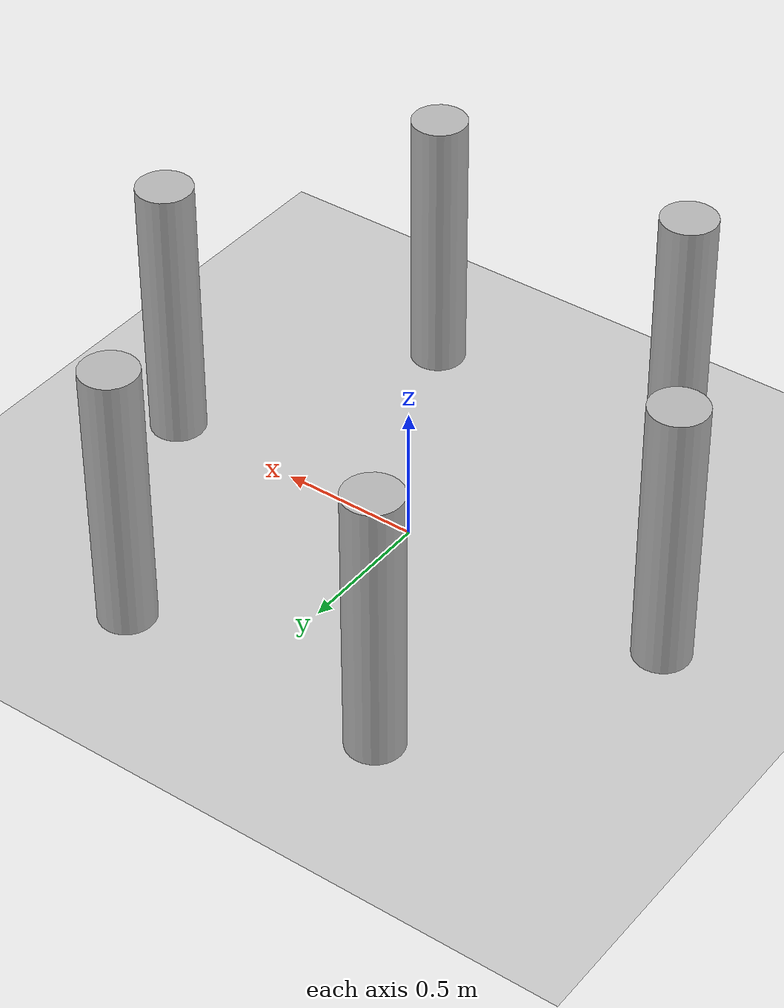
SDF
<sdf version="1.6">
  <world name="empty">
    <physics name="1ms" type="ignored">
      <max_step_size>0.001</max_step_size>
      <real_time_factor>1.0</real_time_factor>
    </physics>
    <plugin
            filename="gz-sim-physics-system"
            name="gz::sim::systems::Physics">
    </plugin>
    <plugin
            filename="gz-sim-user-commands-system"
            name="gz::sim::systems::UserCommands">
    </plugin>
    <plugin
            filename="gz-sim-scene-broadcaster-system"
            name="gz::sim::systems::SceneBroadcaster">
    </plugin>
    <plugin
            filename="gz-sim-sensors-system"
            name="gz::sim::systems::Sensors">
      <render_engine>ogre2</render_engine>
    </plugin>
    <plugin
            filename="gz-sim-contact-system"
            name="gz::sim::systems::Contact">
    </plugin>

    <light type="directional" name="sun">
      <cast_shadows>true</cast_shadows>
      <pose>0 0 10 0 0 0</pose>
      <diffuse>0.8 0.8 0.8 1</diffuse>
      <specular>0.2 0.2 0.2 1</specular>
      <attenuation>
        <range>1000</range>
        <constant>0.9</constant>
        <linear>0.01</linear>
        <quadratic>0.001</quadratic>
      </attenuation>
      <direction>-0.5 0.1 -0.9</direction>
    </light>

    <model name="ground_plane">
      <static>true</static>
      <link name="link">
        <collision name="collision">
          <geometry>
            <plane>
              <normal>0 0 1</normal>
              <size>100 100</size>
            </plane>
          </geometry>
        </collision>
        <visual name="visual">
          <geometry>
            <plane>
              <normal>0 0 1</normal>
              <size>100 100</size>
            </plane>
          </geometry>
          <material>
            <ambient>0.8 0.8 0.8 1</ambient>
            <diffuse>0.8 0.8 0.8 1</diffuse>
            <specular>0.8 0.8 0.8 1</specular>
          </material>
        </visual>
      </link>
    </model>

    <!-- Six cylinders forming a circle -->
    <model name="cylinder_1">
      <pose>1 0 0.5 0 0 0</pose>
      <link name="link">
        <collision name="collision">
          <geometry>
            <cylinder>
              <radius>0.1</radius>
              <length>1.0</length>
            </cylinder>
          </geometry>
        </collision>
        <visual name="visual">
          <geometry>
            <cylinder>
              <radius>0.1</radius>
              <length>1.0</length>
            </cylinder>
          </geometry>
        </visual>
      </link>
    </model>

    <model name="cylinder_2">
      <pose>0.5 0.866 0.5 0 0 0</pose>
      <link name="link">
        <collision name="collision">
          <geometry>
            <cylinder>
              <radius>0.1</radius>
              <length>1.0</length>
            </cylinder>
          </geometry>
        </collision>
        <visual name="visual">
          <geometry>
            <cylinder>
              <radius>0.1</radius>
              <length>1.0</length>
            </cylinder>
          </geometry>
        </visual>
      </link>
    </model>

    <model name="cylinder_3">
      <pose>-0.5 0.866 0.5 0 0 0</pose>
      <link name="link">
        <collision name="collision">
          <geometry>
            <cylinder>
              <radius>0.1</radius>
              <length>1.0</length>
            </cylinder>
          </geometry>
        </collision>
        <visual name="visual">
          <geometry>
            <cylinder>
              <radius>0.1</radius>
              <length>1.0</length>
            </cylinder>
          </geometry>
        </visual>
      </link>
    </model>

    <model name="cylinder_4">
      <pose>-1 0 0.5 0 0 0</pose>
      <link name="link">
        <collision name="collision">
          <geometry>
            <cylinder>
              <radius>0.1</radius>
              <length>1.0</length>
            </cylinder>
          </geometry>
        </collision>
        <visual name="visual">
          <geometry>
            <cylinder>
              <radius>0.1</radius>
              <length>1.0</length>
            </cylinder>
          </geometry>
        </visual>
      </link>
    </model>

    <model name="cylinder_5">
      <pose>-0.5 -0.866 0.5 0 0 0</pose>
      <link name="link">
        <collision name="collision">
          <geometry>
            <cylinder>
              <radius>0.1</radius>
              <length>1.0</length>
            </cylinder>
          </geometry>
        </collision>
        <visual name="visual">
          <geometry>
            <cylinder>
              <radius>0.1</radius>
              <length>1.0</length>
            </cylinder>
          </geometry>
        </visual>
      </link>
    </model>

    <model name="cylinder_6">
      <pose>0.5 -0.866 0.5 0 0 0</pose>
      <link name="link">
        <collision name="collision">
          <geometry>
            <cylinder>
              <radius>0.1</radius>
              <length>1.0</length>
            </cylinder>
          </geometry>
        </collision>
        <visual name="visual">
          <geometry>
            <cylinder>
              <radius>0.1</radius>
              <length>1.0</length>
            </cylinder>
          </geometry>
        </visual>
      </link>
    </model>

  </world>
</sdf>
